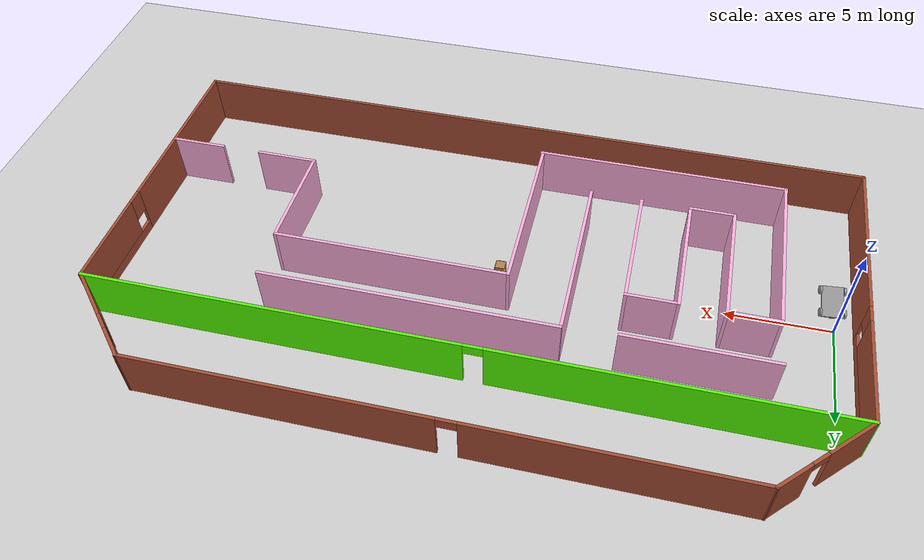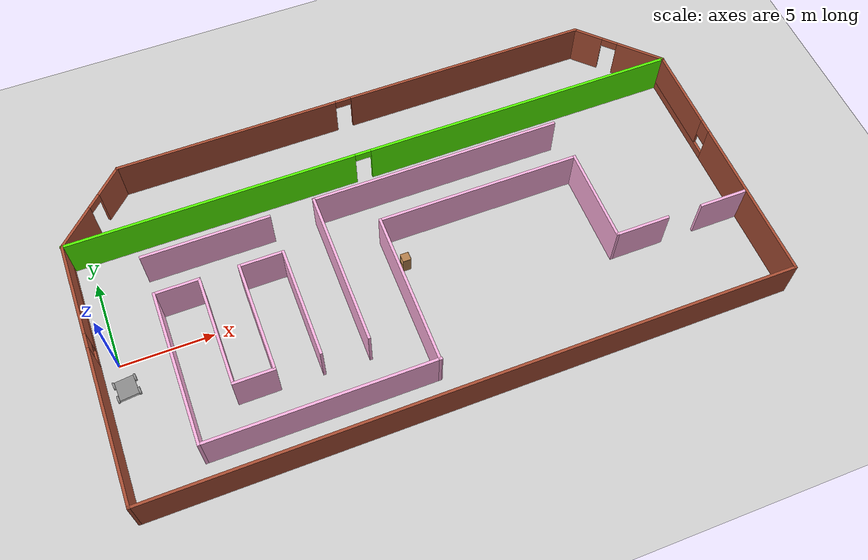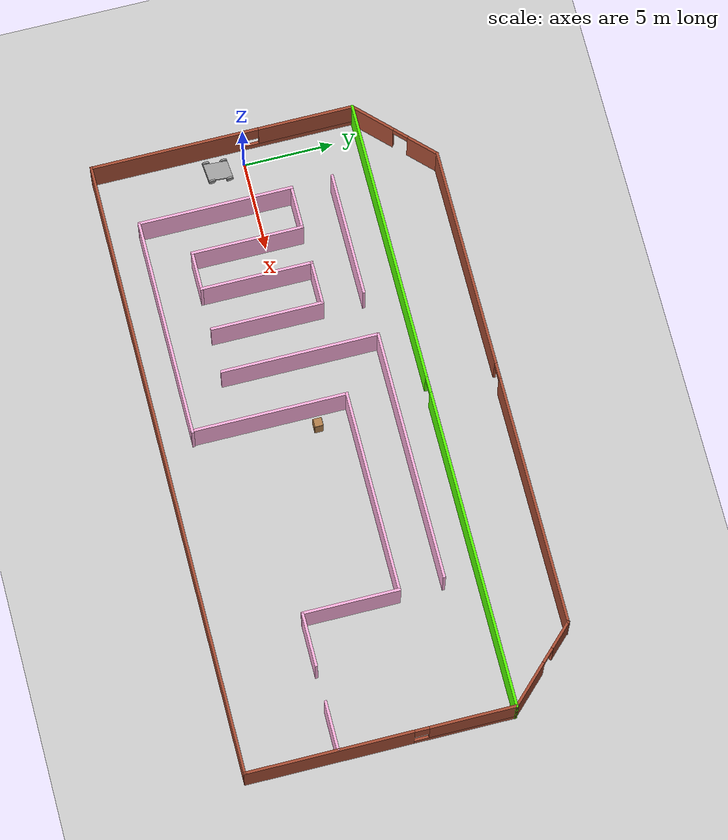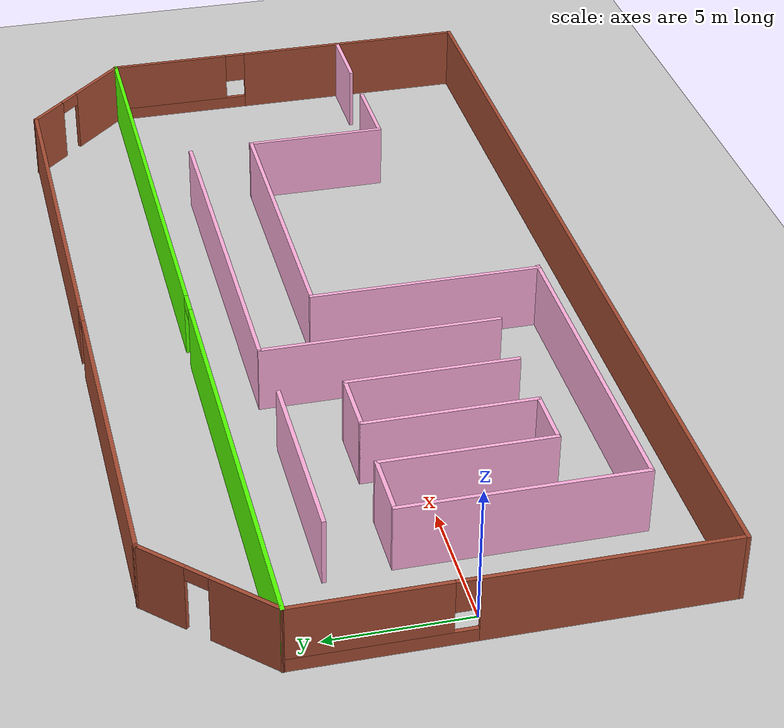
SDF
<sdf version="1.6">
 <world name="default">
  <model name="ground_plane">
   <static>1</static>
   <link name="link">
    <collision name="collision">
     <geometry><plane><normal>0 0 1</normal><size>100 100</size></plane></geometry>
     <surface><friction><ode><mu>100</mu><mu2>50</mu2></ode></friction></surface>
    </collision>
    <visual name="visual">
     <cast_shadows>0</cast_shadows>
     <geometry><plane><normal>0 0 1</normal><size>100 100</size></plane></geometry>
     <material>
      <script><uri>file://media/materials/scripts/gazebo.material</uri><name>Gazebo/Grey</name></script>
     </material>
    </visual>
   </link>
  </model>
  <model name="MyRover">
   <link name="link_0">
    <pose>0.552858 -0.344643 -0.228571 3.14159 1.57079 3.14159</pose>
    <inertial>
     <mass>1</mass>
     <inertia><ixx>0.145833</ixx><ixy>0</ixy><ixz>0</ixz><iyy>0.145833</iyy><iyz>0</iyz><izz>0.125</izz></inertia>
    </inertial>
    <visual name="visual">
     <geometry><cylinder><radius>0.2</radius><length>0.1</length></cylinder></geometry>
     <material>
      <lighting>1</lighting>
      <script><uri>file://media/materials/scripts/gazebo.material</uri><name>Gazebo/Grey</name></script>
      <ambient>0.3 0.3 0.3 1</ambient>
      <diffuse>0.7 0.7 0.7 1</diffuse>
      <specular>0.01 0.01 0.01 1</specular>
      <emissive>0 0 0 1</emissive>
      <shader type="vertex"><normal_map>__default__</normal_map></shader>
     </material>
    </visual>
    <collision name="collision">
     <geometry><cylinder><radius>0.2</radius><length>0.1</length></cylinder></geometry>
     <surface>
      <friction>
       <ode><mu>1</mu><mu2>1</mu2><fdir1>0 0 0</fdir1><slip1>0</slip1><slip2>0</slip2></ode>
       <torsional>
        <coefficient>1</coefficient>
        <patch_radius>0</patch_radius>
        <surface_radius>0</surface_radius>
        <use_patch_radius>1</use_patch_radius>
        <ode><slip>0</slip></ode>
       </torsional>
      </friction>
      <bounce><restitution_coefficient>0</restitution_coefficient><threshold>1e+06</threshold></bounce>
      <contact>
       <collide_without_contact>0</collide_without_contact>
       <collide_without_contact_bitmask>1</collide_without_contact_bitmask>
       <collide_bitmask>1</collide_bitmask>
       <ode>
        <soft_cfm>0</soft_cfm>
        <soft_erp>0.2</soft_erp>
        <kp>1e+13</kp>
        <kd>1</kd>
        <max_vel>0.01</max_vel>
        <min_depth>0</min_depth>
       </ode>
       <bullet>
        <split_impulse>1</split_impulse>
        <split_impulse_penetration_threshold>-0.01</split_impulse_penetration_threshold>
        <soft_cfm>0</soft_cfm>
        <soft_erp>0.2</soft_erp>
        <kp>1e+13</kp>
        <kd>1</kd>
       </bullet>
      </contact>
     </surface>
    </collision>
   </link>
   <link name="link_0_clone">
    <pose>-0.547144 0.755357 -0.228571 3.14159 1.57079 3.14159</pose>
    <inertial>
     <mass>1</mass>
     <inertia><ixx>0.145833</ixx><ixy>0</ixy><ixz>0</ixz><iyy>0.145833</iyy><iyz>0</iyz><izz>0.125</izz></inertia>
    </inertial>
    <visual name="visual">
     <geometry><cylinder><radius>0.2</radius><length>0.1</length></cylinder></geometry>
     <material>
      <lighting>1</lighting>
      <script><uri>file://media/materials/scripts/gazebo.material</uri><name>Gazebo/Grey</name></script>
      <ambient>0.3 0.3 0.3 1</ambient>
      <diffuse>0.7 0.7 0.7 1</diffuse>
      <specular>0.01 0.01 0.01 1</specular>
      <emissive>0 0 0 1</emissive>
      <shader type="vertex"><normal_map>__default__</normal_map></shader>
     </material>
    </visual>
    <collision name="collision">
     <geometry><cylinder><radius>0.2</radius><length>0.1</length></cylinder></geometry>
     <surface>
      <friction>
       <ode><mu>1</mu><mu2>1</mu2><fdir1>0 0 0</fdir1><slip1>0</slip1><slip2>0</slip2></ode>
       <torsional>
        <coefficient>1</coefficient>
        <patch_radius>0</patch_radius>
        <surface_radius>0</surface_radius>
        <use_patch_radius>1</use_patch_radius>
        <ode><slip>0</slip></ode>
       </torsional>
      </friction>
      <bounce><restitution_coefficient>0</restitution_coefficient><threshold>1e+06</threshold></bounce>
      <contact>
       <collide_without_contact>0</collide_without_contact>
       <collide_without_contact_bitmask>1</collide_without_contact_bitmask>
       <collide_bitmask>1</collide_bitmask>
       <ode>
        <soft_cfm>0</soft_cfm>
        <soft_erp>0.2</soft_erp>
        <kp>1e+13</kp>
        <kd>1</kd>
        <max_vel>0.01</max_vel>
        <min_depth>0</min_depth>
       </ode>
       <bullet>
        <split_impulse>1</split_impulse>
        <split_impulse_penetration_threshold>-0.01</split_impulse_penetration_threshold>
        <soft_cfm>0</soft_cfm>
        <soft_erp>0.2</soft_erp>
        <kp>1e+13</kp>
        <kd>1</kd>
       </bullet>
      </contact>
     </surface>
    </collision>
   </link>
   <link name="link_0_clone_0">
    <pose>0.552858 0.755357 -0.228571 3.14159 1.57079 3.14159</pose>
    <inertial>
     <mass>1</mass>
     <inertia><ixx>0.145833</ixx><ixy>0</ixy><ixz>0</ixz><iyy>0.145833</iyy><iyz>0</iyz><izz>0.125</izz></inertia>
    </inertial>
    <visual name="visual">
     <geometry><cylinder><radius>0.2</radius><length>0.1</length></cylinder></geometry>
     <material>
      <lighting>1</lighting>
      <script><uri>file://media/materials/scripts/gazebo.material</uri><name>Gazebo/Grey</name></script>
      <ambient>0.3 0.3 0.3 1</ambient>
      <diffuse>0.7 0.7 0.7 1</diffuse>
      <specular>0.01 0.01 0.01 1</specular>
      <emissive>0 0 0 1</emissive>
      <shader type="vertex"><normal_map>__default__</normal_map></shader>
     </material>
    </visual>
    <collision name="collision">
     <geometry><cylinder><radius>0.2</radius><length>0.1</length></cylinder></geometry>
     <surface>
      <friction>
       <ode><mu>1</mu><mu2>1</mu2><fdir1>0 0 0</fdir1><slip1>0</slip1><slip2>0</slip2></ode>
       <torsional>
        <coefficient>1</coefficient>
        <patch_radius>0</patch_radius>
        <surface_radius>0</surface_radius>
        <use_patch_radius>1</use_patch_radius>
        <ode><slip>0</slip></ode>
       </torsional>
      </friction>
      <bounce><restitution_coefficient>0</restitution_coefficient><threshold>1e+06</threshold></bounce>
      <contact>
       <collide_without_contact>0</collide_without_contact>
       <collide_without_contact_bitmask>1</collide_without_contact_bitmask>
       <collide_bitmask>1</collide_bitmask>
       <ode>
        <soft_cfm>0</soft_cfm>
        <soft_erp>0.2</soft_erp>
        <kp>1e+13</kp>
        <kd>1</kd>
        <max_vel>0.01</max_vel>
        <min_depth>0</min_depth>
       </ode>
       <bullet>
        <split_impulse>1</split_impulse>
        <split_impulse_penetration_threshold>-0.01</split_impulse_penetration_threshold>
        <soft_cfm>0</soft_cfm>
        <soft_erp>0.2</soft_erp>
        <kp>1e+13</kp>
        <kd>1</kd>
       </bullet>
      </contact>
     </surface>
    </collision>
   </link>
   <link name="link_0_clone_1">
    <pose>-0.547144 -0.344643 -0.228571 3.14159 1.57079 3.14159</pose>
    <inertial>
     <mass>1</mass>
     <inertia><ixx>0.145833</ixx><ixy>0</ixy><ixz>0</ixz><iyy>0.145833</iyy><iyz>0</iyz><izz>0.125</izz></inertia>
    </inertial>
    <visual name="visual">
     <geometry><cylinder><radius>0.2</radius><length>0.1</length></cylinder></geometry>
     <material>
      <lighting>1</lighting>
      <script><uri>file://media/materials/scripts/gazebo.material</uri><name>Gazebo/Grey</name></script>
      <ambient>0.3 0.3 0.3 1</ambient>
      <diffuse>0.7 0.7 0.7 1</diffuse>
      <specular>0.01 0.01 0.01 1</specular>
      <emissive>0 0 0 1</emissive>
      <shader type="vertex"><normal_map>__default__</normal_map></shader>
     </material>
    </visual>
    <collision name="collision">
     <geometry><cylinder><radius>0.2</radius><length>0.1</length></cylinder></geometry>
     <surface>
      <friction>
       <ode><mu>1</mu><mu2>1</mu2><fdir1>0 0 0</fdir1><slip1>0</slip1><slip2>0</slip2></ode>
       <torsional>
        <coefficient>1</coefficient>
        <patch_radius>0</patch_radius>
        <surface_radius>0</surface_radius>
        <use_patch_radius>1</use_patch_radius>
        <ode><slip>0</slip></ode>
       </torsional>
      </friction>
      <bounce><restitution_coefficient>0</restitution_coefficient><threshold>1e+06</threshold></bounce>
      <contact>
       <collide_without_contact>0</collide_without_contact>
       <collide_without_contact_bitmask>1</collide_without_contact_bitmask>
       <collide_bitmask>1</collide_bitmask>
       <ode>
        <soft_cfm>0</soft_cfm>
        <soft_erp>0.2</soft_erp>
        <kp>1e+13</kp>
        <kd>1</kd>
        <max_vel>0.01</max_vel>
        <min_depth>0</min_depth>
       </ode>
       <bullet>
        <split_impulse>1</split_impulse>
        <split_impulse_penetration_threshold>-0.01</split_impulse_penetration_threshold>
        <soft_cfm>0</soft_cfm>
        <soft_erp>0.2</soft_erp>
        <kp>1e+13</kp>
        <kd>1</kd>
       </bullet>
      </contact>
     </surface>
    </collision>
   </link>
   <link name="link_1">
    <pose>0.002857 0.205357 -0.228571 0 -0 0</pose>
    <inertial>
     <mass>1</mass>
     <inertia>
      <ixx>0.166667</ixx>
      <ixy>0</ixy>
      <ixz>0</ixz>
      <iyy>0.166667</iyy>
      <iyz>0</iyz>
      <izz>0.166667</izz>
     </inertia>
    </inertial>
    <visual name="visual">
     <geometry><box><size>1 1.5 0.1</size></box></geometry>
     <material>
      <lighting>1</lighting>
      <script><uri>file://media/materials/scripts/gazebo.material</uri><name>Gazebo/Grey</name></script>
      <ambient>0.3 0.3 0.3 1</ambient>
      <diffuse>0.7 0.7 0.7 1</diffuse>
      <specular>0.01 0.01 0.01 1</specular>
      <emissive>0 0 0 1</emissive>
      <shader type="vertex"><normal_map>__default__</normal_map></shader>
     </material>
    </visual>
    <collision name="collision">
     <geometry><box><size>1 1.5 0.1</size></box></geometry>
     <surface>
      <friction>
       <ode><mu>1</mu><mu2>1</mu2><fdir1>0 0 0</fdir1><slip1>0</slip1><slip2>0</slip2></ode>
       <torsional>
        <coefficient>1</coefficient>
        <patch_radius>0</patch_radius>
        <surface_radius>0</surface_radius>
        <use_patch_radius>1</use_patch_radius>
        <ode><slip>0</slip></ode>
       </torsional>
      </friction>
      <bounce><restitution_coefficient>0</restitution_coefficient><threshold>1e+06</threshold></bounce>
      <contact>
       <collide_without_contact>0</collide_without_contact>
       <collide_without_contact_bitmask>1</collide_without_contact_bitmask>
       <collide_bitmask>1</collide_bitmask>
       <ode>
        <soft_cfm>0</soft_cfm>
        <soft_erp>0.2</soft_erp>
        <kp>1e+13</kp>
        <kd>1</kd>
        <max_vel>0.01</max_vel>
        <min_depth>0</min_depth>
       </ode>
       <bullet>
        <split_impulse>1</split_impulse>
        <split_impulse_penetration_threshold>-0.01</split_impulse_penetration_threshold>
        <soft_cfm>0</soft_cfm>
        <soft_erp>0.2</soft_erp>
        <kp>1e+13</kp>
        <kd>1</kd>
       </bullet>
      </contact>
     </surface>
    </collision>
   </link>
   <link name="link_2">
    <pose>-0.017143 -0.519643 0.321429 0 -0 0</pose>
    <inertial>
     <mass>1</mass>
     <inertia>
      <ixx>0.166667</ixx>
      <ixy>0</ixy>
      <ixz>0</ixz>
      <iyy>0.166667</iyy>
      <iyz>0</iyz>
      <izz>0.166667</izz>
     </inertia>
    </inertial>
    <visual name="visual">
     <geometry><box><size>0.25 0.05 1</size></box></geometry>
     <material>
      <lighting>1</lighting>
      <script><uri>file://media/materials/scripts/gazebo.material</uri><name>Gazebo/Grey</name></script>
      <ambient>0.3 0.3 0.3 1</ambient>
      <diffuse>0.7 0.7 0.7 1</diffuse>
      <specular>0.01 0.01 0.01 1</specular>
      <emissive>0 0 0 1</emissive>
      <shader type="vertex"><normal_map>__default__</normal_map></shader>
     </material>
    </visual>
    <collision name="collision">
     <geometry><box><size>0.25 0.05 1</size></box></geometry>
     <surface>
      <friction>
       <ode><mu>1</mu><mu2>1</mu2><fdir1>0 0 0</fdir1><slip1>0</slip1><slip2>0</slip2></ode>
       <torsional>
        <coefficient>1</coefficient>
        <patch_radius>0</patch_radius>
        <surface_radius>0</surface_radius>
        <use_patch_radius>1</use_patch_radius>
        <ode><slip>0</slip></ode>
       </torsional>
      </friction>
      <bounce><restitution_coefficient>0</restitution_coefficient><threshold>1e+06</threshold></bounce>
      <contact>
       <collide_without_contact>0</collide_without_contact>
       <collide_without_contact_bitmask>1</collide_without_contact_bitmask>
       <collide_bitmask>1</collide_bitmask>
       <ode>
        <soft_cfm>0</soft_cfm>
        <soft_erp>0.2</soft_erp>
        <kp>1e+13</kp>
        <kd>1</kd>
        <max_vel>0.01</max_vel>
        <min_depth>0</min_depth>
       </ode>
       <bullet>
        <split_impulse>1</split_impulse>
        <split_impulse_penetration_threshold>-0.01</split_impulse_penetration_threshold>
        <soft_cfm>0</soft_cfm>
        <soft_erp>0.2</soft_erp>
        <kp>1e+13</kp>
        <kd>1</kd>
       </bullet>
      </contact>
     </surface>
    </collision>
   </link>
   <link name="link_3">
    <pose>0.002857 -0.507143 0.821429 3.14159 1.57079 3.14159</pose>
    <inertial>
     <mass>1</mass>
     <inertia><ixx>0.145833</ixx><ixy>0</ixy><ixz>0</ixz><iyy>0.145833</iyy><iyz>0</iyz><izz>0.125</izz></inertia>
    </inertial>
    <visual name="visual">
     <geometry><cylinder><radius>0.05</radius><length>0.5</length></cylinder></geometry>
     <material>
      <lighting>1</lighting>
      <script><uri>file://media/materials/scripts/gazebo.material</uri><name>Gazebo/Grey</name></script>
      <ambient>0.3 0.3 0.3 1</ambient>
      <diffuse>0.7 0.7 0.7 1</diffuse>
      <specular>0.01 0.01 0.01 1</specular>
      <emissive>0 0 0 1</emissive>
      <shader type="vertex"><normal_map>__default__</normal_map></shader>
     </material>
    </visual>
    <collision name="collision">
     <geometry><cylinder><radius>0.05</radius><length>0.5</length></cylinder></geometry>
     <surface>
      <friction>
       <ode><mu>1</mu><mu2>1</mu2><fdir1>0 0 0</fdir1><slip1>0</slip1><slip2>0</slip2></ode>
       <torsional>
        <coefficient>1</coefficient>
        <patch_radius>0</patch_radius>
        <surface_radius>0</surface_radius>
        <use_patch_radius>1</use_patch_radius>
        <ode><slip>0</slip></ode>
       </torsional>
      </friction>
      <bounce><restitution_coefficient>0</restitution_coefficient><threshold>1e+06</threshold></bounce>
      <contact>
       <collide_without_contact>0</collide_without_contact>
       <collide_without_contact_bitmask>1</collide_without_contact_bitmask>
       <collide_bitmask>1</collide_bitmask>
       <ode>
        <soft_cfm>0</soft_cfm>
        <soft_erp>0.2</soft_erp>
        <kp>1e+13</kp>
        <kd>1</kd>
        <max_vel>0.01</max_vel>
        <min_depth>0</min_depth>
       </ode>
       <bullet>
        <split_impulse>1</split_impulse>
        <split_impulse_penetration_threshold>-0.01</split_impulse_penetration_threshold>
        <soft_cfm>0</soft_cfm>
        <soft_erp>0.2</soft_erp>
        <kp>1e+13</kp>
        <kd>1</kd>
       </bullet>
      </contact>
     </surface>
    </collision>
   </link>
   <joint name="link_1_JOINT_1" type="revolute">
    <parent>link_1</parent>
    <child>link_0</child>
    <axis>
     <xyz>0 0 1</xyz>
     <use_parent_model_frame>0</use_parent_model_frame>
     <limit>
      <lower>-1.79769e+308</lower>
      <upper>1.79769e+308</upper>
      <effort>-1</effort>
      <velocity>-1</velocity>
     </limit>
     <dynamics>
      <spring_reference>0</spring_reference>
      <spring_stiffness>0</spring_stiffness>
      <damping>0</damping>
     </dynamics>
    </axis>
    <physics>
     <ode><limit><cfm>0</cfm><erp>0.2</erp></limit><suspension><cfm>0</cfm><erp>0.2</erp></suspension></ode>
    </physics>
   </joint>
   <joint name="link_1_JOINT_2" type="revolute">
    <parent>link_1</parent>
    <child>link_0_clone_0</child>
    <pose>0 0 0 -0.02 0 0</pose>
    <axis>
     <xyz>0 0 1</xyz>
     <use_parent_model_frame>0</use_parent_model_frame>
     <limit>
      <lower>-1.79769e+308</lower>
      <upper>1.79769e+308</upper>
      <effort>-1</effort>
      <velocity>-1</velocity>
     </limit>
     <dynamics>
      <spring_reference>0</spring_reference>
      <spring_stiffness>0</spring_stiffness>
      <damping>0</damping>
     </dynamics>
    </axis>
    <physics>
     <ode><limit><cfm>0</cfm><erp>0.2</erp></limit><suspension><cfm>0</cfm><erp>0.2</erp></suspension></ode>
    </physics>
   </joint>
   <joint name="link_1_JOINT_4" type="revolute">
    <parent>link_1</parent>
    <child>link_0_clone</child>
    <axis>
     <xyz>0 0 1</xyz>
     <use_parent_model_frame>0</use_parent_model_frame>
     <limit>
      <lower>-1.79769e+308</lower>
      <upper>1.79769e+308</upper>
      <effort>-1</effort>
      <velocity>-1</velocity>
     </limit>
     <dynamics>
      <spring_reference>0</spring_reference>
      <spring_stiffness>0</spring_stiffness>
      <damping>0</damping>
     </dynamics>
    </axis>
    <physics>
     <ode><limit><cfm>0</cfm><erp>0.2</erp></limit><suspension><cfm>0</cfm><erp>0.2</erp></suspension></ode>
    </physics>
   </joint>
   <joint name="link_1_JOINT_5" type="revolute">
    <parent>link_1</parent>
    <child>link_0_clone_1</child>
    <axis>
     <xyz>0 0 1</xyz>
     <use_parent_model_frame>0</use_parent_model_frame>
     <limit>
      <lower>-1.79769e+308</lower>
      <upper>1.79769e+308</upper>
      <effort>-1</effort>
      <velocity>-1</velocity>
     </limit>
     <dynamics>
      <spring_reference>0</spring_reference>
      <spring_stiffness>0</spring_stiffness>
      <damping>0</damping>
     </dynamics>
    </axis>
    <physics>
     <ode><limit><cfm>0</cfm><erp>0.2</erp></limit><suspension><cfm>0</cfm><erp>0.2</erp></suspension></ode>
    </physics>
   </joint>
   <joint name="link_1_JOINT_6" type="fixed">
    <parent>link_1</parent>
    <child>link_2</child>
    <physics>
     <ode><limit><cfm>0</cfm><erp>0.2</erp></limit><suspension><cfm>0</cfm><erp>0.2</erp></suspension></ode>
    </physics>
   </joint>
   <joint name="link_2_JOINT_7" type="revolute">
    <parent>link_2</parent>
    <child>link_3</child>
    <axis>
     <xyz>0 0 1</xyz>
     <use_parent_model_frame>0</use_parent_model_frame>
     <limit>
      <lower>-1.79769e+308</lower>
      <upper>1.79769e+308</upper>
      <effort>-1</effort>
      <velocity>-1</velocity>
     </limit>
     <dynamics>
      <spring_reference>0</spring_reference>
      <spring_stiffness>0</spring_stiffness>
      <damping>0</damping>
     </dynamics>
    </axis>
    <physics>
     <ode><limit><cfm>0</cfm><erp>0.2</erp></limit><suspension><cfm>0</cfm><erp>0.2</erp></suspension></ode>
    </physics>
   </joint>
   <static>0</static>
   <pose>0.114675 -1.40874 0.12852 2.72972 1.2e-05 0.09666</pose>
  </model>
  <model name="Mybuilding">
   <pose>16.3545 0.96486 0 0 -0 0</pose>
   <link name="Wall_1">
    <collision name="Wall_1_Collision">
     <geometry><box><size>34.75 0.15 2.5</size></box></geometry>
     <pose>0 0 1.25 0 -0 0</pose>
    </collision>
    <visual name="Wall_1_Visual">
     <pose>0 0 1.25 0 -0 0</pose>
     <geometry><box><size>34.75 0.15 2.5</size></box></geometry>
     <material>
      <script><uri>file://media/materials/scripts/gazebo.material</uri><name>Gazebo/Bricks</name></script>
      <ambient>0.388235 0.368627 1 1</ambient>
     </material>
     <meta><layer>0</layer></meta>
    </visual>
    <pose>2e-06 -9.20704 0 0 -0 0</pose>
   </link>
   <link name="Wall_17">
    <collision name="Wall_17_Collision">
     <geometry><box><size>7 0.15 2.5</size></box></geometry>
     <pose>0 0 1.25 0 -0 0</pose>
    </collision>
    <visual name="Wall_17_Visual">
     <pose>0 0 1.25 0 -0 0</pose>
     <geometry><box><size>7 0.15 2.5</size></box></geometry>
     <material>
      <script><uri>file://media/materials/scripts/gazebo.material</uri><name>Gazebo/Grey</name></script>
      <ambient>1 0.686275 0.866667 1</ambient>
     </material>
     <meta><layer>0</layer></meta>
    </visual>
    <pose>-10.2308 3.33717 0 0 -0 0</pose>
   </link>
   <link name="Wall_2">
    <pose>17.3 -1.90704 0 0 -0 1.5708</pose>
    <visual name="Wall_2_Visual_0">
     <pose>-2.79021 0 1.25 0 -0 0</pose>
     <geometry><box><size>9.16958 0.15 2.5</size></box></geometry>
     <material>
      <script><uri>file://media/materials/scripts/gazebo.material</uri><name>Gazebo/Bricks</name></script>
      <ambient>0.388235 0.368627 1 1</ambient>
     </material>
     <meta><layer>0</layer></meta>
    </visual>
    <collision name="Wall_2_Collision_0">
     <geometry><box><size>9.16958 0.15 2.5</size></box></geometry>
     <pose>-2.79021 0 1.25 0 -0 0</pose>
    </collision>
    <visual name="Wall_2_Visual_1">
     <pose>4.58479 0 0.25 0 -0 0</pose>
     <geometry><box><size>5.58042 0.15 0.5</size></box></geometry>
     <material>
      <script><uri>file://media/materials/scripts/gazebo.material</uri><name>Gazebo/Bricks</name></script>
      <ambient>0.388235 0.368627 1 1</ambient>
     </material>
     <meta><layer>0</layer></meta>
    </visual>
    <collision name="Wall_2_Collision_1">
     <geometry><box><size>5.58042 0.15 0.5</size></box></geometry>
     <pose>4.58479 0 0.25 0 -0 0</pose>
    </collision>
    <visual name="Wall_2_Visual_2">
     <pose>4.98479 0 1.5 0 -0 0</pose>
     <geometry><box><size>4.78042 0.15 2</size></box></geometry>
     <material>
      <script><uri>file://media/materials/scripts/gazebo.material</uri><name>Gazebo/Bricks</name></script>
      <ambient>0.388235 0.368627 1 1</ambient>
     </material>
     <meta><layer>0</layer></meta>
    </visual>
    <collision name="Wall_2_Collision_2">
     <geometry><box><size>4.78042 0.15 2</size></box></geometry>
     <pose>4.98479 0 1.5 0 -0 0</pose>
    </collision>
    <visual name="Wall_2_Visual_3">
     <pose>2.19458 0 1.9 0 -0 0</pose>
     <geometry><box><size>0.8 0.15 1.2</size></box></geometry>
     <material>
      <script><uri>file://media/materials/scripts/gazebo.material</uri><name>Gazebo/Bricks</name></script>
      <ambient>0.388235 0.368627 1 1</ambient>
     </material>
     <meta><layer>0</layer></meta>
    </visual>
    <collision name="Wall_2_Collision_3">
     <geometry><box><size>0.8 0.15 1.2</size></box></geometry>
     <pose>2.19458 0 1.9 0 -0 0</pose>
    </collision>
   </link>
   <link name="Wall_22">
    <collision name="Wall_22_Collision">
     <geometry><box><size>14 0.15 2.5</size></box></geometry>
     <pose>0 0 1.25 0 -0 0</pose>
    </collision>
    <visual name="Wall_22_Visual">
     <pose>0 0 1.25 0 -0 0</pose>
     <geometry><box><size>14 0.15 2.5</size></box></geometry>
     <material>
      <script><uri>file://media/materials/scripts/gazebo.material</uri><name>Gazebo/Grey</name></script>
      <ambient>1 0.686275 0.866667 1</ambient>
     </material>
     <meta><layer>0</layer></meta>
    </visual>
    <pose>2.66567 3.49768 0 0 -0 0</pose>
   </link>
   <link name="Wall_3">
    <pose>2e-06 5.39296 0 0 -0 3.14159</pose>
    <visual name="Wall_3_Visual_0">
     <pose>-8.47813 0 1.25 0 -0 0</pose>
     <geometry><box><size>17.7937 0.15 2.5</size></box></geometry>
     <material>
      <script><uri>file://media/materials/scripts/gazebo.material</uri><name>Gazebo/Grey</name></script>
      <ambient>0.333333 1 0 1</ambient>
     </material>
     <meta><layer>0</layer></meta>
    </visual>
    <collision name="Wall_3_Collision_0">
     <geometry><box><size>17.7937 0.15 2.5</size></box></geometry>
     <pose>-8.47813 0 1.25 0 -0 0</pose>
    </collision>
    <visual name="Wall_3_Visual_1">
     <pose>9.34686 0 1.25 0 -0 0</pose>
     <geometry><box><size>16.0563 0.15 2.5</size></box></geometry>
     <material>
      <script><uri>file://media/materials/scripts/gazebo.material</uri><name>Gazebo/Grey</name></script>
      <ambient>0.333333 1 0 1</ambient>
     </material>
     <meta><layer>0</layer></meta>
    </visual>
    <collision name="Wall_3_Collision_1">
     <geometry><box><size>16.0563 0.15 2.5</size></box></geometry>
     <pose>9.34686 0 1.25 0 -0 0</pose>
    </collision>
    <visual name="Wall_3_Visual_2">
     <pose>0.86873 0 2.25 0 -0 0</pose>
     <geometry><box><size>0.9 0.15 0.5</size></box></geometry>
     <material>
      <script><uri>file://media/materials/scripts/gazebo.material</uri><name>Gazebo/Grey</name></script>
      <ambient>0.333333 1 0 1</ambient>
     </material>
     <meta><layer>0</layer></meta>
    </visual>
    <collision name="Wall_3_Collision_2">
     <geometry><box><size>0.9 0.15 0.5</size></box></geometry>
     <pose>0.86873 0 2.25 0 -0 0</pose>
    </collision>
   </link>
   <link name="Wall_30">
    <collision name="Wall_30_Collision">
     <geometry><box><size>12.25 0.15 2.5</size></box></geometry>
     <pose>0 0 1.25 0 -0 0</pose>
    </collision>
    <visual name="Wall_30_Visual">
     <pose>0 0 1.25 0 -0 0</pose>
     <geometry><box><size>12.25 0.15 2.5</size></box></geometry>
     <material>
      <script><uri>file://media/materials/scripts/gazebo.material</uri><name>Gazebo/Grey</name></script>
      <ambient>1 0.686275 0.866667 1</ambient>
     </material>
     <meta><layer>0</layer></meta>
    </visual>
    <pose>-7.45232 -7.43831 0 0 -0 3.14159</pose>
   </link>
   <link name="Wall_31">
    <collision name="Wall_31_Collision">
     <geometry><box><size>8.62565 0.15 2.5</size></box></geometry>
     <pose>0 0 1.25 0 -0 0</pose>
    </collision>
    <visual name="Wall_31_Visual">
     <pose>0 0 1.25 0 -0 0</pose>
     <geometry><box><size>8.62565 0.15 2.5</size></box></geometry>
     <material>
      <script><uri>file://media/materials/scripts/gazebo.material</uri><name>Gazebo/Grey</name></script>
      <ambient>1 0.686275 0.866667 1</ambient>
     </material>
     <meta><layer>0</layer></meta>
    </visual>
    <pose>-13.5558 -3.20057 0 0 -0 1.5708</pose>
   </link>
   <link name="Wall_32">
    <collision name="Wall_32_Collision">
     <geometry><box><size>2.5 0.15 2.5</size></box></geometry>
     <pose>0 0 1.25 0 -0 0</pose>
    </collision>
    <visual name="Wall_32_Visual">
     <pose>0 0 1.25 0 -0 0</pose>
     <geometry><box><size>2.5 0.15 2.5</size></box></geometry>
     <material>
      <script><uri>file://media/materials/scripts/gazebo.material</uri><name>Gazebo/Grey</name></script>
      <ambient>1 0.686275 0.866667 1</ambient>
     </material>
     <meta><layer>0</layer></meta>
    </visual>
    <pose>-12.3808 1.03717 0 0 -0 0</pose>
   </link>
   <link name="Wall_33">
    <collision name="Wall_33_Collision">
     <geometry><box><size>6.25 0.15 2.5</size></box></geometry>
     <pose>0 0 1.25 0 -0 0</pose>
    </collision>
    <visual name="Wall_33_Visual">
     <pose>0 0 1.25 0 -0 0</pose>
     <geometry><box><size>6.25 0.15 2.5</size></box></geometry>
     <material>
      <script><uri>file://media/materials/scripts/gazebo.material</uri><name>Gazebo/Grey</name></script>
      <ambient>1 0.686275 0.866667 1</ambient>
     </material>
     <meta><layer>0</layer></meta>
    </visual>
    <pose>-11.2058 -2.01282 0 0 0 -1.5708</pose>
   </link>
   <link name="Wall_34">
    <collision name="Wall_34_Collision">
     <geometry><box><size>2.25 0.15 2.5</size></box></geometry>
     <pose>0 0 1.25 0 -0 0</pose>
    </collision>
    <visual name="Wall_34_Visual">
     <pose>0 0 1.25 0 -0 0</pose>
     <geometry><box><size>2.25 0.15 2.5</size></box></geometry>
     <material>
      <script><uri>file://media/materials/scripts/gazebo.material</uri><name>Gazebo/Grey</name></script>
      <ambient>1 0.686275 0.866667 1</ambient>
     </material>
     <meta><layer>0</layer></meta>
    </visual>
    <pose>-10.1558 -5.06283 0 0 -0 0</pose>
   </link>
   <link name="Wall_37">
    <collision name="Wall_37_Collision">
     <geometry><box><size>8.62565 0.15 2.5</size></box></geometry>
     <pose>0 0 1.25 0 -0 0</pose>
    </collision>
    <visual name="Wall_37_Visual">
     <pose>0 0 1.25 0 -0 0</pose>
     <geometry><box><size>8.62565 0.15 2.5</size></box></geometry>
     <material>
      <script><uri>file://media/materials/scripts/gazebo.material</uri><name>Gazebo/Grey</name></script>
      <ambient>1 0.686275 0.866667 1</ambient>
     </material>
     <meta><layer>0</layer></meta>
    </visual>
    <pose>-1.45582 -3.20057 0 0 -0 1.5708</pose>
   </link>
   <link name="Wall_38">
    <collision name="Wall_38_Collision">
     <geometry><box><size>11.3181 0.15 2.5</size></box></geometry>
     <pose>0 0 1.25 0 -0 0</pose>
    </collision>
    <visual name="Wall_38_Visual">
     <pose>0 0 1.25 0 -0 0</pose>
     <geometry><box><size>11.3181 0.15 2.5</size></box></geometry>
     <material>
      <script><uri>file://media/materials/scripts/gazebo.material</uri><name>Gazebo/Grey</name></script>
      <ambient>1 0.686275 0.866667 1</ambient>
     </material>
     <meta><layer>0</layer></meta>
    </visual>
    <pose>4.12824 1.03717 0 0 -0 0</pose>
   </link>
   <link name="Wall_45">
    <collision name="Wall_45_Collision">
     <geometry><box><size>6.25 0.15 2.5</size></box></geometry>
     <pose>0 0 1.25 0 -0 0</pose>
    </collision>
    <visual name="Wall_45_Visual">
     <pose>0 0 1.25 0 -0 0</pose>
     <geometry><box><size>6.25 0.15 2.5</size></box></geometry>
     <material>
      <script><uri>file://media/materials/scripts/gazebo.material</uri><name>Gazebo/Grey</name></script>
      <ambient>1 0.686275 0.866667 1</ambient>
     </material>
     <meta><layer>0</layer></meta>
    </visual>
    <pose>-9.10582 -2.01282 0 0 -0 1.5708</pose>
   </link>
   <link name="Wall_46">
    <collision name="Wall_46_Collision">
     <geometry><box><size>2.5 0.15 2.5</size></box></geometry>
     <pose>0 0 1.25 0 -0 0</pose>
    </collision>
    <visual name="Wall_46_Visual">
     <pose>0 0 1.25 0 -0 0</pose>
     <geometry><box><size>2.5 0.15 2.5</size></box></geometry>
     <material>
      <script><uri>file://media/materials/scripts/gazebo.material</uri><name>Gazebo/Grey</name></script>
      <ambient>1 0.686275 0.866667 1</ambient>
     </material>
     <meta><layer>0</layer></meta>
    </visual>
    <pose>-7.93083 1.03717 0 0 -0 0</pose>
   </link>
   <link name="Wall_5">
    <pose>-17.3 -1.90704 0 0 -0 1.5708</pose>
    <visual name="Wall_5_Visual_0">
     <pose>-3.08448 0 1.25 0 -0 0</pose>
     <geometry><box><size>8.58105 0.15 2.5</size></box></geometry>
     <material>
      <script><uri>file://media/materials/scripts/gazebo.material</uri><name>Gazebo/Bricks</name></script>
      <ambient>0.388235 0.368627 1 1</ambient>
     </material>
     <meta><layer>0</layer></meta>
    </visual>
    <collision name="Wall_5_Collision_0">
     <geometry><box><size>8.58105 0.15 2.5</size></box></geometry>
     <pose>-3.08448 0 1.25 0 -0 0</pose>
    </collision>
    <visual name="Wall_5_Visual_1">
     <pose>4.29052 0 0.25 0 -0 0</pose>
     <geometry><box><size>6.16895 0.15 0.5</size></box></geometry>
     <material>
      <script><uri>file://media/materials/scripts/gazebo.material</uri><name>Gazebo/Bricks</name></script>
      <ambient>0.388235 0.368627 1 1</ambient>
     </material>
     <meta><layer>0</layer></meta>
    </visual>
    <collision name="Wall_5_Collision_1">
     <geometry><box><size>6.16895 0.15 0.5</size></box></geometry>
     <pose>4.29052 0 0.25 0 -0 0</pose>
    </collision>
    <visual name="Wall_5_Visual_2">
     <pose>4.69052 0 1.5 0 -0 0</pose>
     <geometry><box><size>5.36895 0.15 2</size></box></geometry>
     <material>
      <script><uri>file://media/materials/scripts/gazebo.material</uri><name>Gazebo/Bricks</name></script>
      <ambient>0.388235 0.368627 1 1</ambient>
     </material>
     <meta><layer>0</layer></meta>
    </visual>
    <collision name="Wall_5_Collision_2">
     <geometry><box><size>5.36895 0.15 2</size></box></geometry>
     <pose>4.69052 0 1.5 0 -0 0</pose>
    </collision>
    <visual name="Wall_5_Visual_3">
     <pose>1.60605 0 1.9 0 -0 0</pose>
     <geometry><box><size>0.8 0.15 1.2</size></box></geometry>
     <material>
      <script><uri>file://media/materials/scripts/gazebo.material</uri><name>Gazebo/Bricks</name></script>
      <ambient>0.388235 0.368627 1 1</ambient>
     </material>
     <meta><layer>0</layer></meta>
    </visual>
    <collision name="Wall_5_Collision_3">
     <geometry><box><size>0.8 0.15 1.2</size></box></geometry>
     <pose>1.60605 0 1.9 0 -0 0</pose>
    </collision>
   </link>
   <link name="Wall_50">
    <collision name="Wall_50_Collision">
     <geometry><box><size>6.25 0.15 2.5</size></box></geometry>
     <pose>0 0 1.25 0 -0 0</pose>
    </collision>
    <visual name="Wall_50_Visual">
     <pose>0 0 1.25 0 -0 0</pose>
     <geometry><box><size>6.25 0.15 2.5</size></box></geometry>
     <material>
      <script><uri>file://media/materials/scripts/gazebo.material</uri><name>Gazebo/Grey</name></script>
      <ambient>1 0.686275 0.866667 1</ambient>
     </material>
     <meta><layer>0</layer></meta>
    </visual>
    <pose>-6.75583 -2.01282 0 0 0 -1.5708</pose>
   </link>
   <link name="Wall_52">
    <collision name="Wall_52_Collision">
     <geometry><box><size>8.75 0.15 2.5</size></box></geometry>
     <pose>0 0 1.25 0 -0 0</pose>
    </collision>
    <visual name="Wall_52_Visual">
     <pose>0 0 1.25 0 -0 0</pose>
     <geometry><box><size>8.75 0.15 2.5</size></box></geometry>
     <material>
      <script><uri>file://media/materials/scripts/gazebo.material</uri><name>Gazebo/Grey</name></script>
      <ambient>1 0.686275 0.866667 1</ambient>
     </material>
     <meta><layer>0</layer></meta>
    </visual>
    <pose>-4.29289 -0.816935 0 0 0 -1.5708</pose>
   </link>
   <link name="Wall_59">
    <collision name="Wall_59_Collision">
     <geometry><box><size>5.39327 0.15 2.5</size></box></geometry>
     <pose>0 0 1.25 0 -0 0</pose>
    </collision>
    <visual name="Wall_59_Visual">
     <pose>0 0 1.25 0 -0 0</pose>
     <geometry><box><size>5.39327 0.15 2.5</size></box></geometry>
     <material>
      <script><uri>file://media/materials/scripts/gazebo.material</uri><name>Gazebo/Grey</name></script>
      <ambient>1 0.686275 0.866667 1</ambient>
     </material>
     <meta><layer>0</layer></meta>
    </visual>
    <pose>9.71229 -1.58432 0 0 0 -1.5708</pose>
   </link>
   <link name="Wall_60">
    <collision name="Wall_60_Collision">
     <geometry><box><size>3 0.15 2.5</size></box></geometry>
     <pose>0 0 1.25 0 -0 0</pose>
    </collision>
    <visual name="Wall_60_Visual">
     <pose>0 0 1.25 0 -0 0</pose>
     <geometry><box><size>3 0.15 2.5</size></box></geometry>
     <material>
      <script><uri>file://media/materials/scripts/gazebo.material</uri><name>Gazebo/Grey</name></script>
      <ambient>1 0.686275 0.866667 1</ambient>
     </material>
     <meta><layer>0</layer></meta>
    </visual>
    <pose>11.1908 -4.20582 0 0 -0 0</pose>
   </link>
   <link name="Wall_62">
    <collision name="Wall_62_Collision">
     <geometry><box><size>2.75 0.15 2.5</size></box></geometry>
     <pose>0 0 1.25 0 -0 0</pose>
    </collision>
    <visual name="Wall_62_Visual">
     <pose>0 0 1.25 0 -0 0</pose>
     <geometry><box><size>2.75 0.15 2.5</size></box></geometry>
     <material>
      <script><uri>file://media/materials/scripts/gazebo.material</uri><name>Gazebo/Grey</name></script>
      <ambient>1 0.686275 0.866667 1</ambient>
     </material>
     <meta><layer>0</layer></meta>
    </visual>
    <pose>15.947 -4.20668 0 0 -0 0</pose>
   </link>
   <link name="Wall_7">
    <pose>-15.4085 7.28447 0 0 -0 0.785398</pose>
    <visual name="Wall_7_Visual_0">
     <pose>-1.4112 0 1.25 0 -0 0</pose>
     <geometry><box><size>2.67759 0.15 2.5</size></box></geometry>
     <material>
      <script><uri>file://media/materials/scripts/gazebo.material</uri><name>Gazebo/Bricks</name></script>
      <ambient>0.388235 0.368627 1 1</ambient>
     </material>
     <meta><layer>0</layer></meta>
    </visual>
    <collision name="Wall_7_Collision_0">
     <geometry><box><size>2.67759 0.15 2.5</size></box></geometry>
     <pose>-1.4112 0 1.25 0 -0 0</pose>
    </collision>
    <visual name="Wall_7_Visual_1">
     <pose>1.7888 0 1.25 0 -0 0</pose>
     <geometry><box><size>1.92241 0.15 2.5</size></box></geometry>
     <material>
      <script><uri>file://media/materials/scripts/gazebo.material</uri><name>Gazebo/Bricks</name></script>
      <ambient>0.388235 0.368627 1 1</ambient>
     </material>
     <meta><layer>0</layer></meta>
    </visual>
    <collision name="Wall_7_Collision_1">
     <geometry><box><size>1.92241 0.15 2.5</size></box></geometry>
     <pose>1.7888 0 1.25 0 -0 0</pose>
    </collision>
    <visual name="Wall_7_Visual_2">
     <pose>0.377593 0 2.25 0 -0 0</pose>
     <geometry><box><size>0.9 0.15 0.5</size></box></geometry>
     <material>
      <script><uri>file://media/materials/scripts/gazebo.material</uri><name>Gazebo/Bricks</name></script>
      <ambient>0.388235 0.368627 1 1</ambient>
     </material>
     <meta><layer>0</layer></meta>
    </visual>
    <collision name="Wall_7_Collision_2">
     <geometry><box><size>0.9 0.15 0.5</size></box></geometry>
     <pose>0.377593 0 2.25 0 -0 0</pose>
    </collision>
   </link>
   <link name="Wall_8">
    <pose>0.033023 9.17598 0 0 -0 0</pose>
    <visual name="Wall_8_Visual_0">
     <pose>-7.40812 0 1.25 0 -0 0</pose>
     <geometry><box><size>12.4338 0.15 2.5</size></box></geometry>
     <material>
      <script><uri>file://media/materials/scripts/gazebo.material</uri><name>Gazebo/Bricks</name></script>
      <ambient>0.388235 0.368627 1 1</ambient>
     </material>
     <meta><layer>0</layer></meta>
    </visual>
    <collision name="Wall_8_Collision_0">
     <geometry><box><size>12.4338 0.15 2.5</size></box></geometry>
     <pose>-7.40812 0 1.25 0 -0 0</pose>
    </collision>
    <visual name="Wall_8_Visual_1">
     <pose>6.66688 0 1.25 0 -0 0</pose>
     <geometry><box><size>13.9162 0.15 2.5</size></box></geometry>
     <material>
      <script><uri>file://media/materials/scripts/gazebo.material</uri><name>Gazebo/Bricks</name></script>
      <ambient>0.388235 0.368627 1 1</ambient>
     </material>
     <meta><layer>0</layer></meta>
    </visual>
    <collision name="Wall_8_Collision_1">
     <geometry><box><size>13.9162 0.15 2.5</size></box></geometry>
     <pose>6.66688 0 1.25 0 -0 0</pose>
    </collision>
    <visual name="Wall_8_Visual_2">
     <pose>-0.741243 0 2.25 0 -0 0</pose>
     <geometry><box><size>0.9 0.15 0.5</size></box></geometry>
     <material>
      <script><uri>file://media/materials/scripts/gazebo.material</uri><name>Gazebo/Bricks</name></script>
      <ambient>0.388235 0.368627 1 1</ambient>
     </material>
     <meta><layer>0</layer></meta>
    </visual>
    <collision name="Wall_8_Collision_2">
     <geometry><box><size>0.9 0.15 0.5</size></box></geometry>
     <pose>-0.741243 0 2.25 0 -0 0</pose>
    </collision>
   </link>
   <link name="Wall_9">
    <pose>15.4415 7.28447 0 0 0 -0.794204</pose>
    <visual name="Wall_9_Visual_0">
     <pose>-1.85429 0 1.25 0 -0 0</pose>
     <geometry><box><size>1.74493 0.15 2.5</size></box></geometry>
     <material>
      <script><uri>file://media/materials/scripts/gazebo.material</uri><name>Gazebo/Bricks</name></script>
      <ambient>0.388235 0.368627 1 1</ambient>
     </material>
     <meta><layer>0</layer></meta>
    </visual>
    <collision name="Wall_9_Collision_0">
     <geometry><box><size>1.74493 0.15 2.5</size></box></geometry>
     <pose>-1.85429 0 1.25 0 -0 0</pose>
    </collision>
    <visual name="Wall_9_Visual_1">
     <pose>1.32247 0 1.25 0 -0 0</pose>
     <geometry><box><size>2.80857 0.15 2.5</size></box></geometry>
     <material>
      <script><uri>file://media/materials/scripts/gazebo.material</uri><name>Gazebo/Bricks</name></script>
      <ambient>0.388235 0.368627 1 1</ambient>
     </material>
     <meta><layer>0</layer></meta>
    </visual>
    <collision name="Wall_9_Collision_1">
     <geometry><box><size>2.80857 0.15 2.5</size></box></geometry>
     <pose>1.32247 0 1.25 0 -0 0</pose>
    </collision>
    <visual name="Wall_9_Visual_2">
     <pose>-0.531822 0 2.25 0 -0 0</pose>
     <geometry><box><size>0.9 0.15 0.5</size></box></geometry>
     <material>
      <script><uri>file://media/materials/scripts/gazebo.material</uri><name>Gazebo/Bricks</name></script>
      <ambient>0.388235 0.368627 1 1</ambient>
     </material>
     <meta><layer>0</layer></meta>
    </visual>
    <collision name="Wall_9_Collision_2">
     <geometry><box><size>0.9 0.15 0.5</size></box></geometry>
     <pose>-0.531822 0 2.25 0 -0 0</pose>
    </collision>
   </link>
   <static>1</static>
  </model>
  <model name="cabinet">
   <static>1</static>
   <link name="cabinet_bottom_plate">
    <inertial>
     <pose>0 0 -1 0 -0 0</pose>
     <inertia><ixx>2.05</ixx><ixy>0</ixy><ixz>0</ixz><iyy>2.05</iyy><iyz>0</iyz><izz>2.05</izz></inertia>
     <mass>25</mass>
    </inertial>
    <collision name="cabinet_bottom_plate_geom">
     <pose>0 0 0.01 0 -0 0</pose>
     <geometry><box><size>0.45 0.45 0.02</size></box></geometry>
    </collision>
    <visual name="cabinet_bottom_plate_geom_visual">
     <pose>0 0 0.01 0 -0 0</pose>
     <geometry><box><size>0.45 0.45 0.02</size></box></geometry>
     <material>
      <script><uri>file://media/materials/scripts/gazebo.material</uri><name>Gazebo/Wood</name></script>
     </material>
    </visual>
    <collision name="cabinet_bottom_plate_geom_cabinet_back_plate">
     <pose>0.235 0 0.51 0 -0 0</pose>
     <geometry><box><size>0.02 0.45 1.02</size></box></geometry>
    </collision>
    <visual name="cabinet_bottom_plate_geom_cabinet_back_plate_visual">
     <pose>0.235 0 0.51 0 -0 0</pose>
     <geometry><box><size>0.02 0.45 1.02</size></box></geometry>
     <material>
      <script><uri>file://media/materials/scripts/gazebo.material</uri><name>Gazebo/Wood</name></script>
     </material>
    </visual>
    <collision name="cabinet_bottom_plate_geom_cabinet_left_plate">
     <pose>0 0.235 0.51 0 -0 0</pose>
     <geometry><box><size>0.45 0.02 1.02</size></box></geometry>
    </collision>
    <visual name="cabinet_bottom_plate_geom_cabinet_left_plate_visual">
     <pose>0 0.235 0.51 0 -0 0</pose>
     <geometry><box><size>0.45 0.02 1.02</size></box></geometry>
     <material>
      <script><uri>file://media/materials/scripts/gazebo.material</uri><name>Gazebo/Wood</name></script>
     </material>
    </visual>
    <collision name="cabinet_bottom_plate_geom_cabinet_middle_plate">
     <pose>0 0 0.51 0 -0 0</pose>
     <geometry><box><size>0.45 0.45 0.02</size></box></geometry>
    </collision>
    <visual name="cabinet_bottom_plate_geom_cabinet_middle_plate_visual">
     <pose>0 0 0.51 0 -0 0</pose>
     <geometry><box><size>0.45 0.45 0.02</size></box></geometry>
     <material>
      <script><uri>file://media/materials/scripts/gazebo.material</uri><name>Gazebo/Wood</name></script>
     </material>
    </visual>
    <collision name="cabinet_bottom_plate_geom_cabinet_right_plate">
     <pose>0 -0.235 0.51 0 -0 0</pose>
     <geometry><box><size>0.45 0.02 1.02</size></box></geometry>
    </collision>
    <visual name="cabinet_bottom_plate_geom_cabinet_right_plate_visual">
     <pose>0 -0.235 0.51 0 -0 0</pose>
     <geometry><box><size>0.45 0.02 1.02</size></box></geometry>
     <material>
      <script><uri>file://media/materials/scripts/gazebo.material</uri><name>Gazebo/Wood</name></script>
     </material>
    </visual>
    <collision name="cabinet_bottom_plate_geom_cabinet_top_plate">
     <pose>0 0 1.01 0 -0 0</pose>
     <geometry><box><size>0.45 0.45 0.02</size></box></geometry>
    </collision>
    <visual name="cabinet_bottom_plate_geom_cabinet_top_plate_visual">
     <pose>0 0 1.01 0 -0 0</pose>
     <geometry><box><size>0.45 0.45 0.02</size></box></geometry>
     <material>
      <script><uri>file://media/materials/scripts/gazebo.material</uri><name>Gazebo/Wood</name></script>
     </material>
    </visual>
   </link>
   <pose>15.6229 0.235033 0 0 -0 0</pose>
  </model>
 </world>
</sdf>
